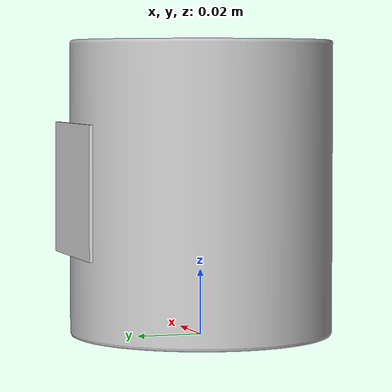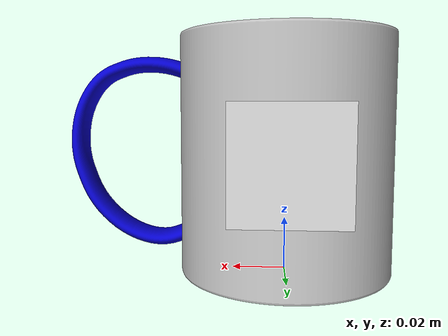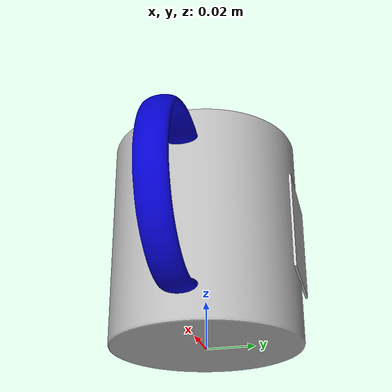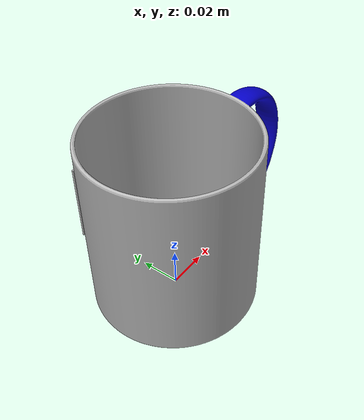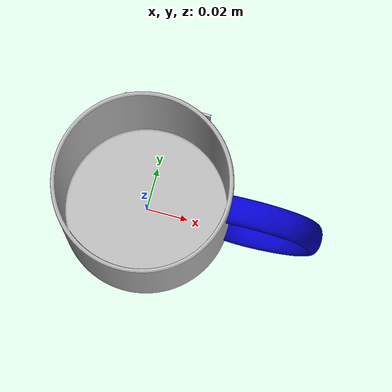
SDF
<?xml version='1.0'?>
<sdf version='1.6'>
  <model name='mycup'>
    <link name='tag'>
      <inertial>
        <mass>0.00000317</mass>
        <inertia>
          <ixx>1.46e-06</ixx>
          <ixy>0</ixy>
          <ixz>0</ixz>
          <iyy>1.62e-06</iyy>
          <iyz>0</iyz>
          <izz>7.1e-07</izz>
        </inertia>
      </inertial>
      <pose frame=''>0 0.04 0 -1.570796 0 0</pose>
      <visual name='main_Visual'>
        <geometry>
          <box>
            <size>0.04 0.04 0.001</size>
          </box>
        </geometry>
        <material>
          <lighting>1</lighting>
          <shader type='vertex'>
            <normal_map>__default__</normal_map>
          </shader>
          <ambient>1 1 1 1</ambient>
          <diffuse>0.8 0.8 0.8 1</diffuse>
          <specular>0.01 0.01 0.01 1</specular>
          <emissive>0 0 0 1</emissive>
        </material>
      </visual>
      <self_collide>0</self_collide>
    </link>
    <link name='cup'>
      <pose frame=''>-0.00025 -0.00015 2.1e-05 0 0 0</pose>
      <visual name='visual'>
        <geometry>
          <mesh>
            <uri>model://mycup/meshes/cup.dae</uri>
          </mesh>
        </geometry>
      </visual>
      <collision name='collision'>
        <laser_retro>0</laser_retro>
        <max_contacts>10</max_contacts>
        <pose frame=''>0 0 0 0 0 0</pose>
        <geometry>
          <mesh>
            <uri>model://mycup/meshes/cup.dae</uri>
            <scale>1 1 1</scale>
          </mesh>
        </geometry>
       </collision>
    </link>
    <joint type='fixed' name='joint'>
      <child>tag</child>
      <parent>cup</parent>
    </joint>
    <pose frame=''>0 0 0.045 0 0 0</pose>
    <static>1</static>
    <allow_auto_disable>1</allow_auto_disable>
  </model>
</sdf>
